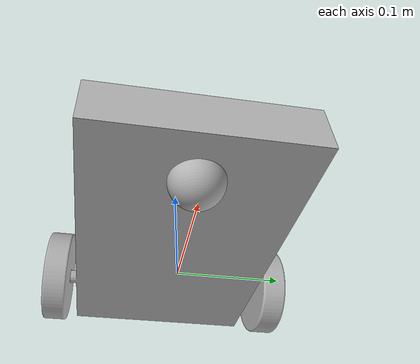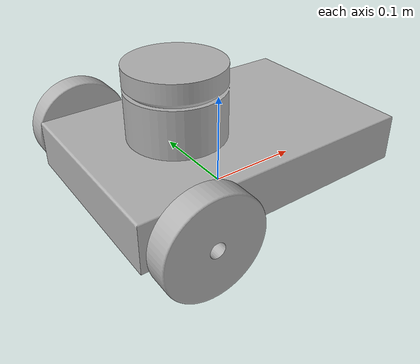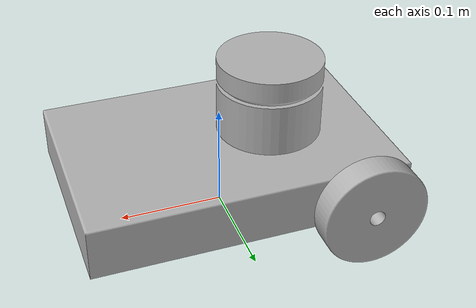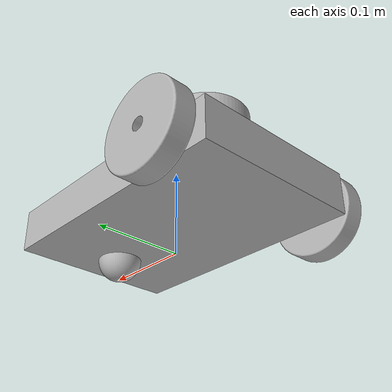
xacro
<?xml version="1.0" ?>
<robot name="teleopbot_v1" xmlns:xacro="http://www.ros.org/wiki/xacro">

<xacro:include filename="$(find teleopbot_v1_description)/urdf/materials.xacro" />
<xacro:include filename="$(find teleopbot_v1_description)/urdf/teleopbot_v1.trans" />
<xacro:include filename="$(find teleopbot_v1_description)/urdf/teleopbot_v1.gazebo" />

<!-- Define the world link -->
<link name="base_footprint"/>

<!-- Connect world link to the robot base link -->
<joint name="base_footprint_joint" type="fixed">
  <origin xyz="0 0 0" rpy="0 0 0"/>
  <parent link="base_footprint"/>
  <child link="base_link"/>
</joint>

<link name="base_link">
  <inertial>
    <origin xyz="-0.0058869389678185766 6.428701789423718e-17 0.05577666259264441" rpy="0 0 0"/>
    <mass value="3.5991007159747865"/>
    <inertia ixx="0.012564" iyy="0.026721" izz="0.035946" ixy="0.0" iyz="0.0" ixz="0.000918"/>
  </inertial>
  <visual>
    <origin xyz="0 0 0" rpy="0 0 0"/>
    <geometry>
      <mesh filename="package://teleopbot_v1_description/meshes/base_link.stl" scale="0.001 0.001 0.001"/>
    </geometry>
    <material name="silver"/>
  </visual>
  <collision>
    <origin xyz="0 0 0" rpy="0 0 0"/>
    <geometry>
      <mesh filename="package://teleopbot_v1_description/meshes/base_link.stl" scale="0.001 0.001 0.001"/>
    </geometry>
  </collision>
</link>

<link name="right_wheel_1">
  <inertial>
    <origin xyz="-1.8082757513582237e-14 -0.012499999999999997 0.0" rpy="0 0 0"/>
    <mass value="0.17799934197303033"/>
    <inertia ixx="0.000123" iyy="0.000227" izz="0.000123" ixy="-0.0" iyz="0.0" ixz="0.0"/>
  </inertial>
  <visual>
    <origin xyz="0.1 0.11 -0.05" rpy="0 0 0"/>
    <geometry>
      <mesh filename="package://teleopbot_v1_description/meshes/right_wheel_1.stl" scale="0.001 0.001 0.001"/>
    </geometry>
    <material name="silver"/>
  </visual>
  <collision>
    <origin xyz="0.1 0.11 -0.05" rpy="0 0 0"/>
    <geometry>
      <mesh filename="package://teleopbot_v1_description/meshes/right_wheel_1.stl" scale="0.001 0.001 0.001"/>
    </geometry>
  </collision>
</link>

<link name="left_wheel_1">
  <inertial>
    <origin xyz="-1.8082757513582237e-14 0.012499999999999997 0.0" rpy="0 0 0"/>
    <mass value="0.17799934197303033"/>
    <inertia ixx="0.000123" iyy="0.000227" izz="0.000123" ixy="0.0" iyz="0.0" ixz="0.0"/>
  </inertial>
  <visual>
    <origin xyz="0.1 -0.11 -0.05" rpy="0 0 0"/>
    <geometry>
      <mesh filename="package://teleopbot_v1_description/meshes/left_wheel_1.stl" scale="0.001 0.001 0.001"/>
    </geometry>
    <material name="silver"/>
  </visual>
  <collision>
    <origin xyz="0.1 -0.11 -0.05" rpy="0 0 0"/>
    <geometry>
      <mesh filename="package://teleopbot_v1_description/meshes/left_wheel_1.stl" scale="0.001 0.001 0.001"/>
    </geometry>
  </collision>
</link>

<link name="caster_1">
  <inertial>
    <origin xyz="-0.04999999999999999 4.342517325091522e-18 -0.009374999999999998" rpy="0 0 0"/>
    <mass value="0.25689064927791533"/>
    <inertia ixx="4.2e-05" iyy="4.2e-05" izz="6.4e-05" ixy="-0.0" iyz="0.0" ixz="0.0"/>
  </inertial>
  <visual>
    <origin xyz="-0.15 -0.0 -0.025" rpy="0 0 0"/>
    <geometry>
      <mesh filename="package://teleopbot_v1_description/meshes/caster_1.stl" scale="0.001 0.001 0.001"/>
    </geometry>
    <material name="silver"/>
  </visual>
  <collision>
    <origin xyz="-0.15 -0.0 -0.025" rpy="0 0 0"/>
    <geometry>
      <mesh filename="package://teleopbot_v1_description/meshes/caster_1.stl" scale="0.001 0.001 0.001"/>
    </geometry>
  </collision>
</link>

<link name="lidar_1">
  <inertial>
    <origin xyz="1.3877787807814457e-17 5.904170394414034e-18 0.01271329027872195" rpy="0 0 0"/>
    <mass value="1.5115445803512537"/>
    <inertia ixx="0.001005" iyy="0.001005" izz="0.001857" ixy="0.0" iyz="-0.0" ixz="-0.0"/>
  </inertial>
  <visual>
    <origin xyz="0.05 -0.0 -0.125" rpy="0 0 0"/>
    <geometry>
      <mesh filename="package://teleopbot_v1_description/meshes/lidar_1.stl" scale="0.001 0.001 0.001"/>
    </geometry>
    <material name="silver"/>
  </visual>
  <collision>
    <origin xyz="0.05 -0.0 -0.125" rpy="0 0 0"/>
    <geometry>
      <mesh filename="package://teleopbot_v1_description/meshes/lidar_1.stl" scale="0.001 0.001 0.001"/>
    </geometry>
  </collision>
</link>

<joint name="Revolute 1" type="continuous">
  <origin xyz="-0.1 -0.11 0.05" rpy="0 0 0"/>
  <parent link="base_link"/>
  <child link="right_wheel_1"/>
  <axis xyz="0.0 1.0 0.0"/>
</joint>

<joint name="Revolute 2" type="continuous">
  <origin xyz="-0.1 0.11 0.05" rpy="0 0 0"/>
  <parent link="base_link"/>
  <child link="left_wheel_1"/>
  <axis xyz="0.0 1.0 0.0"/>
</joint>

<joint name="Rigid 3" type="fixed">
  <origin xyz="0.15 0.0 0.025" rpy="0 0 0"/>
  <parent link="base_link"/>
  <child link="caster_1"/>
</joint>

<joint name="Rigid 4" type="fixed">
  <origin xyz="-0.05 0.0 0.125" rpy="0 0 0"/>
  <parent link="base_link"/>
  <child link="lidar_1"/>
</joint>

</robot>

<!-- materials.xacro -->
<robot name="teleopbot_v1" xmlns:xacro="http://www.ros.org/wiki/xacro" >

<material name="silver">
  <color rgba="0.700 0.700 0.700 1.000"/>
</material>

</robot>

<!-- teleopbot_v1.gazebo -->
<robot name="teleopbot_v1" xmlns:xacro="http://www.ros.org/wiki/xacro" >

<xacro:property name="body_color" value="Gazebo/Silver" />

<gazebo>
  <plugin name="control" filename="libgazebo_ros_control.so"/>
</gazebo>
<gazebo reference="base_link">
  <material>${body_color}</material>
  <mu1>0.2</mu1>
  <mu2>0.2</mu2>
  <selfCollide>true</selfCollide>
  <gravity>true</gravity>
</gazebo>

<gazebo reference="right_wheel_1">
  <material>${body_color}</material>
  <mu1>15000</mu1>
  <mu2>15000</mu2>
  <selfCollide>true</selfCollide>
</gazebo>

<gazebo reference="left_wheel_1">
  <material>${body_color}</material>
  <mu1>15000</mu1>
  <mu2>15000</mu2>
  <selfCollide>true</selfCollide>
</gazebo>

<gazebo reference="caster_1">
  <material>${body_color}</material>
  <mu1>0.1</mu1>
  <mu2>0.1</mu2>
  <selfCollide>true</selfCollide>
</gazebo>

<gazebo reference="lidar_1">
  <material>${body_color}</material>
  <mu1>0.2</mu1>
  <mu2>0.2</mu2>
  <selfCollide>true</selfCollide>
</gazebo>

<gazebo>
  <plugin name="differential_drive_controller" filename="libgazebo_ros_diff_drive.so">

    <!-- Plugin update rate in Hz -->
    <updateRate>10</updateRate>

    <!-- Name of left joint, defaults to `left_joint` -->
    <leftJoint>Revolute 2</leftJoint>

    <!-- Name of right joint, defaults to `right_joint` -->
    <rightJoint>Revolute 1</rightJoint>

    <!-- The distance from the center of one wheel to the other, in meters, defaults to 0.34 m -->
    <wheelSeparation>0.45</wheelSeparation>

    <!-- Diameter of the wheels, in meters, defaults to 0.15 m -->
    <wheelDiameter>0.18</wheelDiameter>

    <!-- Wheel acceleration, in rad/s^2, defaults to 0.0 rad/s^2 -->
    <wheelAcceleration>1.0</wheelAcceleration>

    <!-- Maximum torque which the wheels can produce, in Nm, defaults to 5 Nm -->
    <wheelTorque>20</wheelTorque>

    <!-- Topic to receive geometry_msgs/Twist message commands, defaults to `cmd_vel` -->
    <commandTopic>cmd_vel</commandTopic>

    <!-- Topic to publish nav_msgs/Odometry messages, defaults to `odom` -->
    <odometryTopic>odom</odometryTopic>

    <!-- Odometry frame, defaults to `odom` -->
    <odometryFrame>odom</odometryFrame>

    <!-- Robot frame to calculate odometry from, defaults to `base_footprint` -->
    <robotBaseFrame>base_link</robotBaseFrame>

    <!-- Odometry source, 0 for ENCODER, 1 for WORLD, defaults to WORLD -->
    <odometrySource>1</odometrySource>

    <!-- Set to true to publish transforms for the wheel links, defaults to false -->
    <publishWheelTF>true</publishWheelTF>

    <!-- Set to true to publish transforms for the odometry, defaults to true -->
    <publishOdom>true</publishOdom>

    <!-- Set to true to publish sensor_msgs/JointState on /joint_states for the wheel joints, defaults to false -->
    <publishWheelJointState>true</publishWheelJointState>

    <!-- Set to true to swap right and left wheels, defaults to true -->
    <legacyMode>false</legacyMode>
  </plugin>
</gazebo>

  <!-- hokuyo -->
  <gazebo reference="lidar_1">
    <sensor type="ray" name="head_hokuyo_sensor">
      <pose>0 0 0 0 0 0</pose>
      <visualize>true</visualize>
      <update_rate>20</update_rate>
      <ray>
        <scan>
          <horizontal>
            <samples>720</samples>
            <resolution>1</resolution>
            <min_angle>-3.14</min_angle>
            <max_angle>3.14</max_angle>
          </horizontal>
        </scan>
        <range>
          <min>0.5</min>
          <max>20.0</max>
          <resolution>0.01</resolution>
        </range>
        <noise>
          <type>gaussian</type>
          <mean>0.0</mean>
          <stddev>0.01</stddev>
        </noise>
      </ray>
      <plugin name="gazebo_ros_head_hokuyo_controller" filename="libgazebo_ros_laser.so">
        <topicName>/rrbot/laser/scan</topicName>
        <frameName>lidar_1</frameName>
      </plugin>
    </sensor>
  </gazebo>

</robot>
